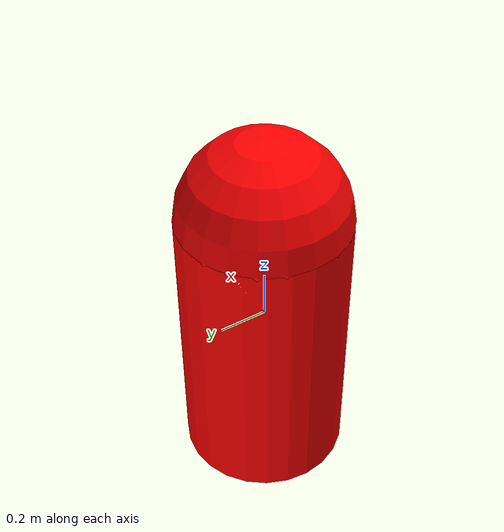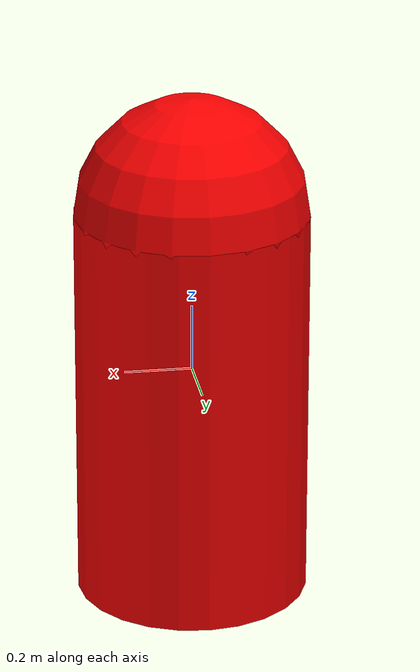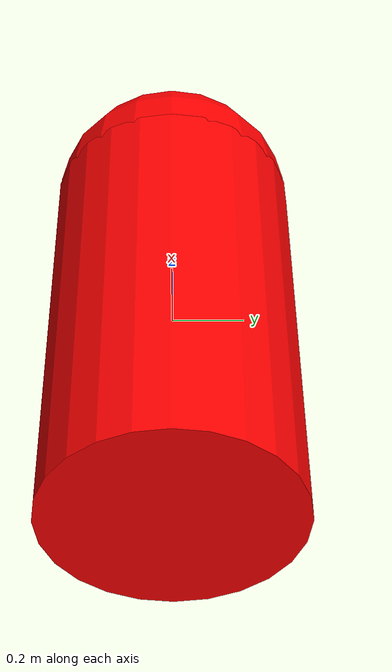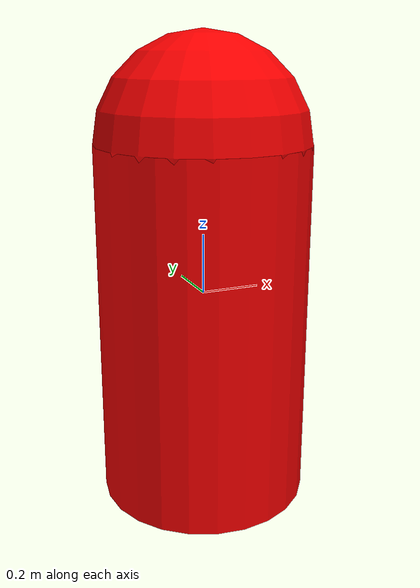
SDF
<?xml version="1.0"?>
<sdf version="1.6">
  <model name="simple_fire">
    <static>true</static>

    <link name="fire_link">

      <!-- YELLOW INNER FLAME -->
      <visual name="flame_yellow">
        <geometry>
          <cylinder>
            <radius>0.15</radius>
            <length>0.6</length>
          </cylinder>
        </geometry>
        <pose>0 0 0 0 0 0</pose>
        <material>
          <ambient>1 1 0 1</ambient>
          <diffuse>1 1 0 1</diffuse>
          <emissive>1 0.8 0 1</emissive>
        </material>
      </visual>

      <visual name="flame_yellow_top">
        <geometry>
          <sphere>
            <radius>0.15</radius>
          </sphere>
        </geometry>
        <pose>0 0 0.3 0 0 0</pose>
        <material>
          <ambient>1 1 0 1</ambient>
          <diffuse>1 1 0 1</diffuse>
          <emissive>1 0.8 0 1</emissive>
        </material>
      </visual>

      <!-- ORANGE MID FLAME -->
      <visual name="flame_orange">
        <geometry>
          <cylinder>
            <radius>0.25</radius>
            <length>0.9</length>
          </cylinder>
        </geometry>
        <pose>0 0 -0.05 0 0 0</pose>
        <material>
          <ambient>1 0.5 0 1</ambient>
          <diffuse>1 0.5 0 1</diffuse>
          <emissive>1 0.3 0 1</emissive>
        </material>
      </visual>

      <visual name="flame_orange_top">
        <geometry>
          <sphere>
            <radius>0.25</radius>
          </sphere>
        </geometry>
        <pose>0 0 0.35 0 0 0</pose>
        <material>
          <ambient>1 0.5 0 1</ambient>
          <diffuse>1 0.5 0 1</diffuse>
          <emissive>1 0.3 0 1</emissive>
        </material>
      </visual>

      <!-- RED OUTER FLAME -->
      <visual name="flame_red">
        <geometry>
          <cylinder>
            <radius>0.35</radius>
            <length>1.2</length>
          </cylinder>
        </geometry>
        <pose>0 0 -0.1 0 0 0</pose>
        <material>
          <ambient>1 0 0 1</ambient>
          <diffuse>1 0 0 1</diffuse>
          <emissive>1 0.1 0.1 1</emissive>
        </material>
      </visual>

      <visual name="flame_red_top">
        <geometry>
          <sphere>
            <radius>0.35</radius>
          </sphere>
        </geometry>
        <pose>0 0 0.5 0 0 0</pose>
        <material>
          <ambient>1 0 0 1</ambient>
          <diffuse>1 0 0 1</diffuse>
          <emissive>1 0.1 0.1 1</emissive>
        </material>
      </visual>

    </link>
  </model>
</sdf>
